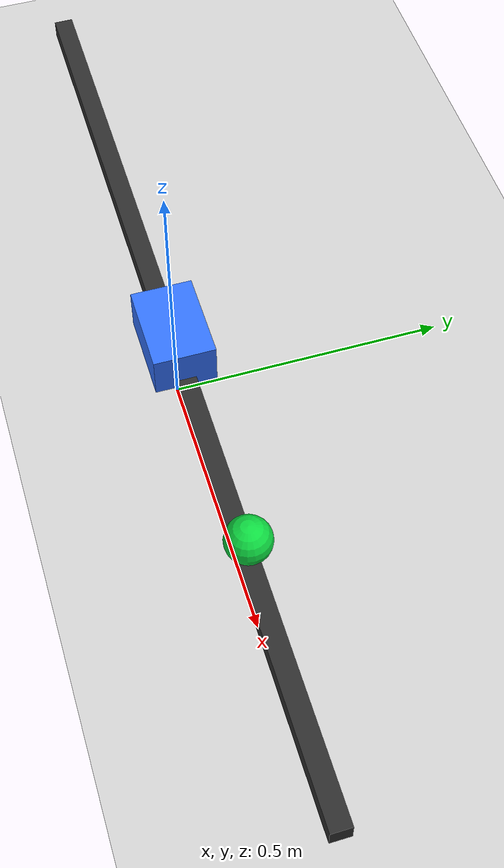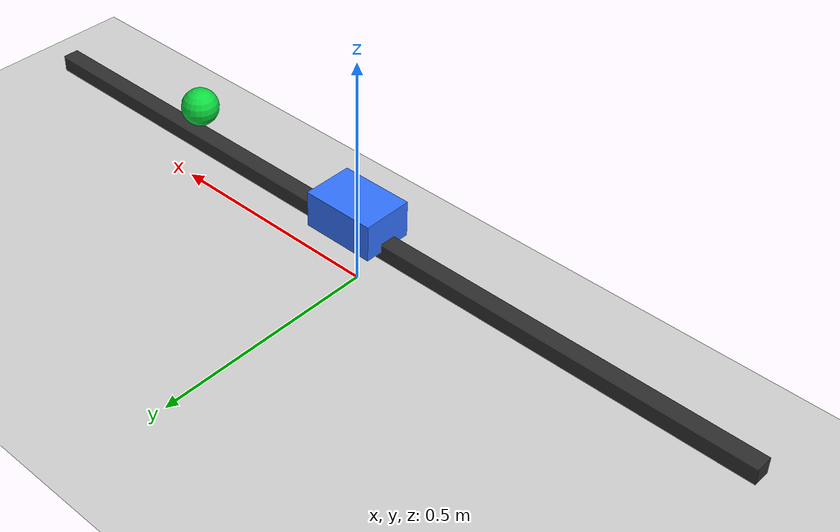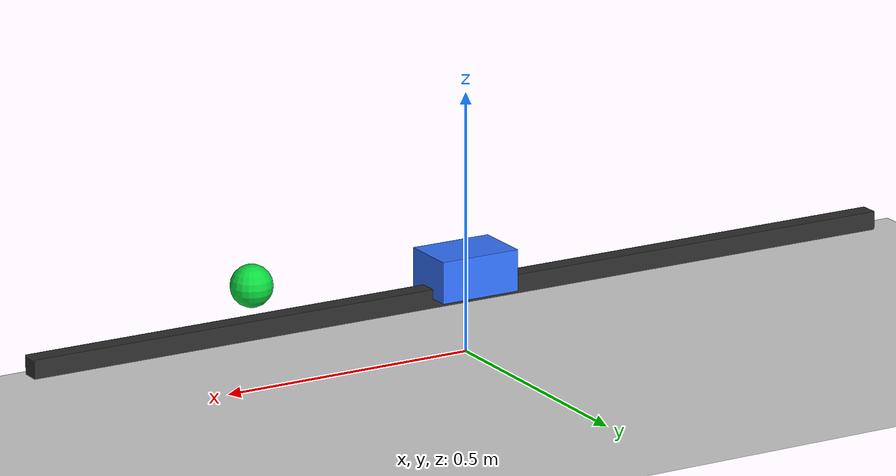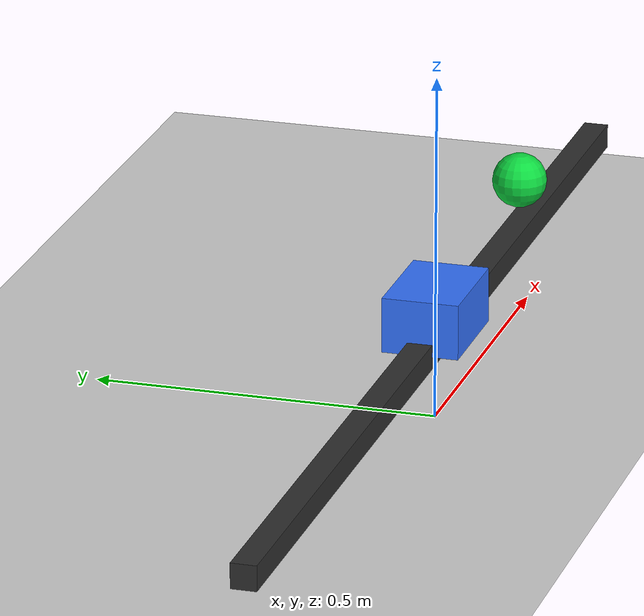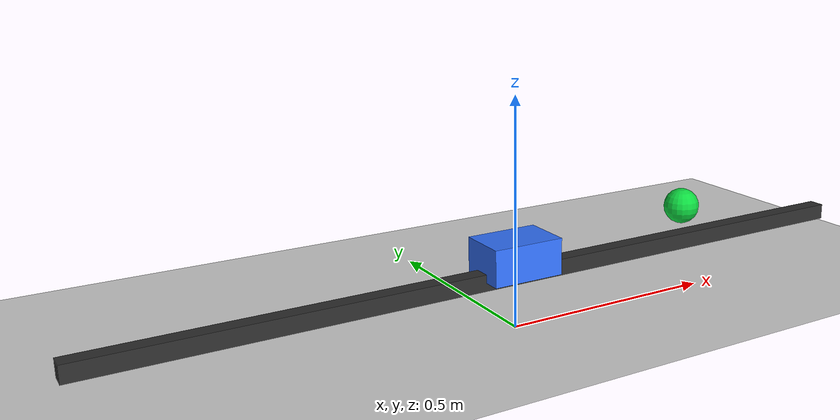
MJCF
<mujoco model="cart_reach">
  <compiler angle="degree"/>

  <option timestep="0.002" gravity="0 0 -9.81"/>

  <default>
    <joint damping="0.05"/>
    <geom friction="1 0.005 0.0001"/>
  </default>

  <worldbody>
    <light pos="0 0 3" dir="0 0 -1"/>

    <geom
      name="ground"
      type="plane"
      size="2 2 0.1"
      rgba="0.82 0.82 0.82 1"/>

    <geom
      name="rail"
      type="box"
      pos="0 0 0.12"
      size="0.90 0.018 0.018"
      rgba="0.18 0.18 0.18 1"
      contype="0"
      conaffinity="0"/>

    <site
      name="target_site"
      type="sphere"
      pos="0.45 0 0.20"
      size="0.04"
      rgba="0.05 0.85 0.25 1"/>

    <body name="cart" pos="0 0 0.16">
      <joint
        name="cart_slide_x"
        type="slide"
        axis="1 0 0"
        limited="true"
        range="-0.85 0.85"
        damping="0.12"/>

      <geom
        name="cart_geom"
        type="box"
        size="0.08 0.055 0.04"
        mass="1.0"
        rgba="0.2 0.45 1 1"/>
    </body>
  </worldbody>

  <actuator>
    <motor
      name="cart_motor"
      joint="cart_slide_x"
      gear="1"
      ctrllimited="true"
      ctrlrange="-10 10"/>
  </actuator>
</mujoco>
